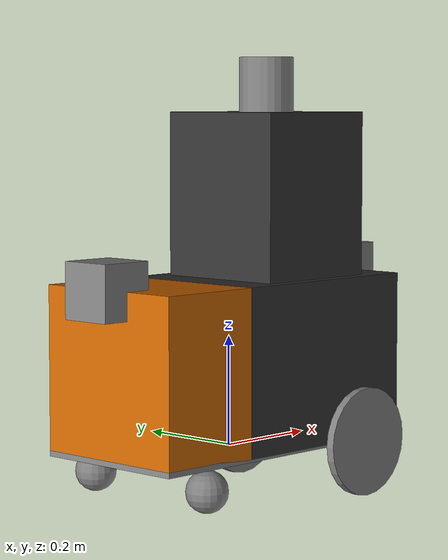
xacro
<?xml version="1.0"?>
<robot name="dodobot" xmlns:xacro="http://www.ros.org/wiki/xacro">
  <material name="orange">
    <color rgba="0.8 0.4 0.0 1.0"/>
  </material>

  <material name="black">
    <color rgba="0.2 0.2 0.2 1.0"/>
  </material>

  <material name="gray">
    <color rgba="0.5 0.5 0.5 1.0"/>
  </material>

  <!-- Base Link -->
  <link name="base_footprint">
    <inertial>
      <origin xyz="0 0 0.005" rpy="0 0 0"/>
      <mass value="5"/>
      <inertia ixx="0.0395" ixy="0" ixz="0" iyy="0.106" iyz="0" izz="0.145"/>
    </inertial>
    <visual>
      <origin xyz="0 0 0.005" rpy="0 0 0"/>
      <geometry>
        <box size="0.6 0.3 0.01"/>
      </geometry>
      <material name="gray"/>
    </visual>
    <collision>
      <origin xyz="0 0 0.005" rpy="0 0 0"/>
      <geometry>
        <box size="0.6 0.3 0.01"/>
      </geometry>
    </collision>
  </link>

  <!-- Compartment 1 -->
  <link name="compartment_1">
    <inertial>
      <origin xyz="0 0 0" rpy="0 0 0"/>
      <mass value="2"/>
      <inertia ixx="0.0275" ixy="0" ixz="0" iyy="0.0275" iyz="0" izz="0.015"/>
    </inertial>
    <visual>
      <origin xyz="0 0 0" rpy="0 0 0"/>
      <geometry>
        <box size="0.4 0.30 0.30"/>
      </geometry>
      <material name="black"/>
    </visual>
    <collision>
      <origin xyz="0 0 0" rpy="0 0 0"/>
      <geometry>
        <box size="0.4 0.30 0.30"/>
      </geometry>
    </collision>
  </link>

  <joint name="base_to_compartment_1" type="fixed">
    <parent link="base_footprint"/>
    <child link="compartment_1"/>
    <origin xyz="0.10 0 0.155" rpy="0 0 0"/>
  </joint>

  <!-- Compartment 2 -->
  <link name="compartment_2">
    <inertial>
      <origin xyz="0 0 0" rpy="0 0 0"/>
      <mass value="1"/>
      <inertia ixx="0.0108" ixy="0" ixz="0" iyy="0.0083" iyz="0" izz="0.0058"/>
    </inertial>
    <visual>
      <origin xyz="0 0 0" rpy="0 0 0"/>
      <geometry>
        <box size="0.20 0.30 0.30"/>
      </geometry>
      <material name="orange"/>
    </visual>
    <collision>
      <origin xyz="0 0 0" rpy="0 0 0"/>
      <geometry>
        <box size="0.20 0.30 0.30"/>
      </geometry>
    </collision>
  </link>

  <joint name="base_to_compartment_2" type="fixed">
    <parent link="base_footprint"/>
    <child link="compartment_2"/>
    <origin xyz="-0.20 0 0.155" rpy="0 0 0"/>
  </joint>

  <!-- Compartment 3 -->
  <link name="compartment_3">
    <inertial>
      <origin xyz="0 0 0" rpy="0 0 0"/>
      <mass value="1.5"/>
      <inertia ixx="0.0234375" ixy="0" ixz="0" iyy="0.0234375" iyz="0" izz="0.015625"/>
    </inertial>
    <visual>
      <origin xyz="0 0 0" rpy="0 0 0"/>
      <geometry>
        <box size="0.25 0.25 0.30"/>
      </geometry>
      <material name="black"/>
    </visual>
    <collision>
      <origin xyz="0 0 0" rpy="0 0 0"/>
      <geometry>
        <box size="0.25 0.25 0.30"/>
      </geometry>
    </collision>
  </link>

  <joint name="compartment_1_to_compartment_3" type="fixed">
    <parent link="compartment_1"/>
    <child link="compartment_3"/>
    <origin xyz="0 0 0.30" rpy="0 0 0"/>
  </joint>

  <!-- Left Compartment 1 Wheel -->
  <link name="left_compartment_1_wheel">
    <inertial>
      <origin xyz="0 0 0" rpy="0 0 0"/>
      <mass value="0.5"/>
      <inertia ixx="0.000703" ixy="0" ixz="0" iyy="0.000703" iyz="0" izz="0.001406"/>
    </inertial>
    <visual>
      <origin xyz="0 0 0" rpy="1.5708 0 0"/>
      <geometry>
        <cylinder radius="0.10" length="0.015"/>
      </geometry>
      <material name="gray"/>
    </visual>
    <collision>
      <origin xyz="0 0 0" rpy="1.5708 0 0"/>
      <geometry>
        <cylinder radius="0.10" length="0.015"/>
      </geometry>
    </collision>
  </link>

  <joint name="base_to_left_compartment_1_wheel" type="continuous">
    <parent link="base_footprint"/>
    <child link="left_compartment_1_wheel"/>
    <origin xyz="0.20 0.1575 0" rpy="0 0 0"/>
    <axis xyz="0 1 0"/>
  </joint>

  <!-- Right Compartment 1 Wheel -->
  <link name="right_compartment_1_wheel">
    <inertial>
      <origin xyz="0 0 0" rpy="0 0 0"/>
      <mass value="0.5"/>
      <inertia ixx="0.000703" ixy="0" ixz="0" iyy="0.000703" iyz="0" izz="0.001406"/>
    </inertial>
    <visual>
      <origin xyz="0 0 0" rpy="1.5708 0 0"/>
      <geometry>
        <cylinder radius="0.10" length="0.015"/>
      </geometry>
      <material name="gray"/>
    </visual>
    <collision>
      <origin xyz="0 0 0" rpy="1.5708 0 0"/>
      <geometry>
        <cylinder radius="0.10" length="0.015"/>
      </geometry>
    </collision>
  </link>

  <joint name="base_to_right_compartment_1_wheel" type="continuous">
    <parent link="base_footprint"/>
    <child link="right_compartment_1_wheel"/>
    <origin xyz="0.20 -0.1575 0" rpy="0 0 0"/>
    <axis xyz="0 1 0"/>
  </joint>

  <!-- Left Compartment 2 Wheel (Caster) -->
  <link name="left_compartment_2_wheel">
    <inertial>
      <origin xyz="0 0 0" rpy="0 0 0"/>
      <mass value="0.05"/>
      <inertia ixx="0.0000281" ixy="0" ixz="0" iyy="0.0000281" iyz="0" izz="0.0000281"/>
    </inertial>
    <visual>
      <origin xyz="0 0 0" rpy="0 0 0"/>
      <geometry>
        <sphere radius="0.0375"/>
      </geometry>
      <material name="gray"/>
    </visual>
    <collision>
      <origin xyz="0 0 0" rpy="0 0 0"/>
      <geometry>
        <sphere radius="0.0375"/>
      </geometry>
    </collision>
  </link>

  <joint name="base_to_left_compartment_2_wheel" type="fixed">
    <parent link="base_footprint"/>
    <child link="left_compartment_2_wheel"/>
    <origin xyz="-0.20 0.14 -0.0375" rpy="0 0 0"/>
  </joint>

  <!-- Right Compartment 2 Wheel (Caster) -->
  <link name="right_compartment_2_wheel">
    <inertial>
      <origin xyz="0 0 0" rpy="0 0 0"/>
      <mass value="0.05"/>
      <inertia ixx="0.0000281" ixy="0" ixz="0" iyy="0.0000281" iyz="0" izz="0.0000281"/>
    </inertial>
    <visual>
      <origin xyz="0 0 0" rpy="0 0 0"/>
      <geometry>
        <sphere radius="0.0375"/>
      </geometry>
      <material name="gray"/>
    </visual>
    <collision>
      <origin xyz="0 0 0" rpy="0 0 0"/>
      <geometry>
        <sphere radius="0.0375"/>
      </geometry>
    </collision>
  </link>

  <joint name="base_to_right_compartment_2_wheel" type="fixed">
    <parent link="base_footprint"/>
    <child link="right_compartment_2_wheel"/>
    <origin xyz="-0.20 -0.14 -0.0375" rpy="0 0 0"/>
  </joint>

  <!-- LiDAR -->
  <link name="lidar_link">
    <inertial>
      <mass value="0.1"/>
      <inertia ixx="0.000166667" iyy="0.000166667" izz="0.000166667" ixy="0" ixz="0" iyz="0"/>
    </inertial>
    <collision>
      <geometry>
        <cylinder radius="0.05" length="0.1"/>
      </geometry>
    </collision>
    <visual>
      <geometry>
        <cylinder radius="0.05" length="0.1"/>
      </geometry>
      <material name="gray"/>
    </visual>
  </link>

  <joint name="compartment_3_to_lidar" type="fixed">
    <parent link="compartment_3"/>
    <child link="lidar_link"/>
    <origin xyz="0 0 0.20" rpy="0 0 0"/>
  </joint>

  <!-- Wide Angle Camera -->
  <link name="wide_angle_camera_link">
    <inertial>
      <mass value="0.1"/>
      <inertia ixx="0.000166667" iyy="0.000166667" izz="0.000166667" ixy="0" ixz="0" iyz="0"/>
    </inertial>
    <visual>
      <geometry>
        <box size="0.1 0.1 0.1"/>
      </geometry>
      <material name="gray"/>
    </visual>
    <collision>
      <geometry>
        <box size="0.1 0.1 0.1"/>
      </geometry>
    </collision>
  </link>

  <joint name="compartment_1_to_camera" type="fixed">
    <parent link="compartment_1"/>
    <child link="wide_angle_camera_link"/>
    <origin xyz="0.20 0 0.15" rpy="0 0 0"/>
  </joint>

  <!-- Rear Wide Angle Camera -->
  <link name="rear_wide_angle_camera_link">
    <inertial>
      <mass value="0.1"/>
      <inertia ixx="0.000166667" iyy="0.000166667" izz="0.000166667" ixy="0" ixz="0" iyz="0"/>
    </inertial>
    <visual>
      <geometry>
        <box size="0.1 0.1 0.1"/>
      </geometry>
      <material name="gray"/>
    </visual>
    <collision>
      <geometry>
        <box size="0.1 0.1 0.1"/>
      </geometry>
    </collision>
  </link>

  <joint name="compartment_2_to_rear_camera" type="fixed">
    <parent link="compartment_2"/>
    <child link="rear_wide_angle_camera_link"/>
    <origin xyz="-0.10 0 0.15" rpy="0 0 3.14159"/>
  </joint>

</robot>
